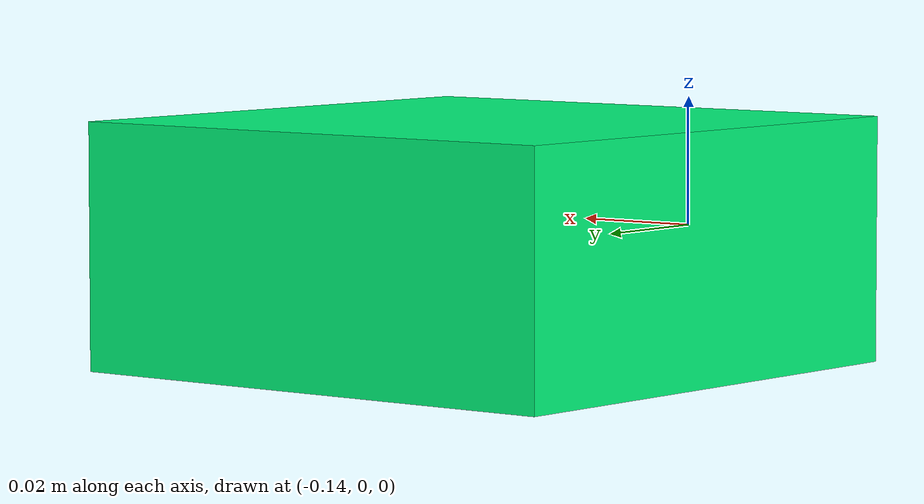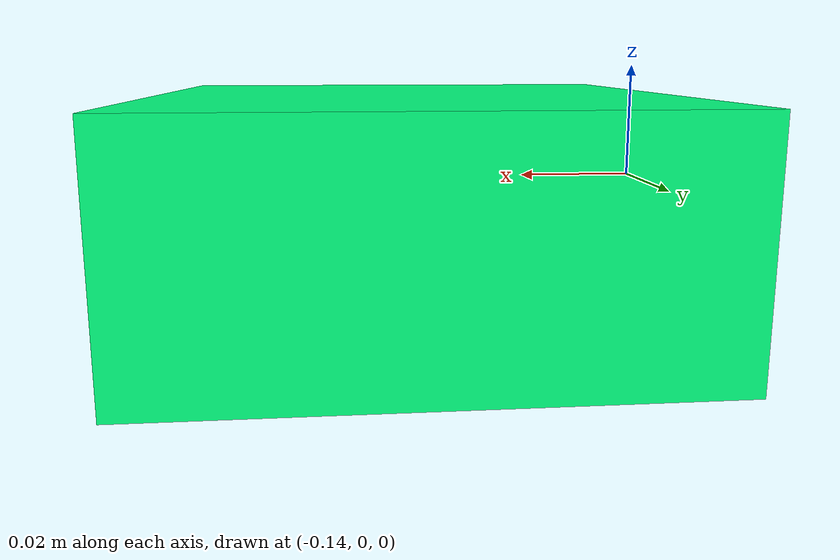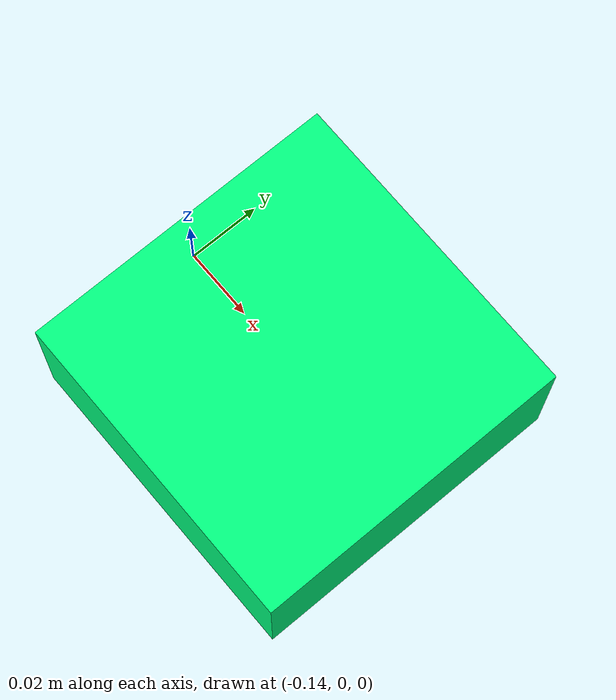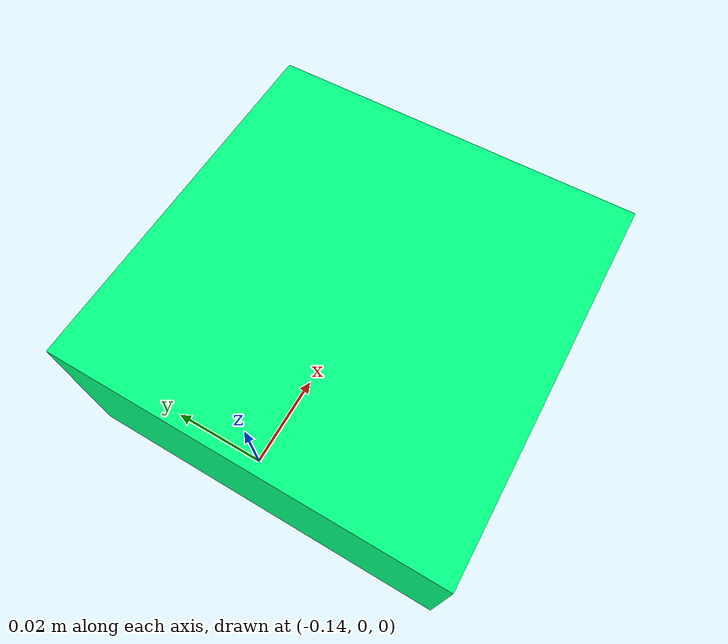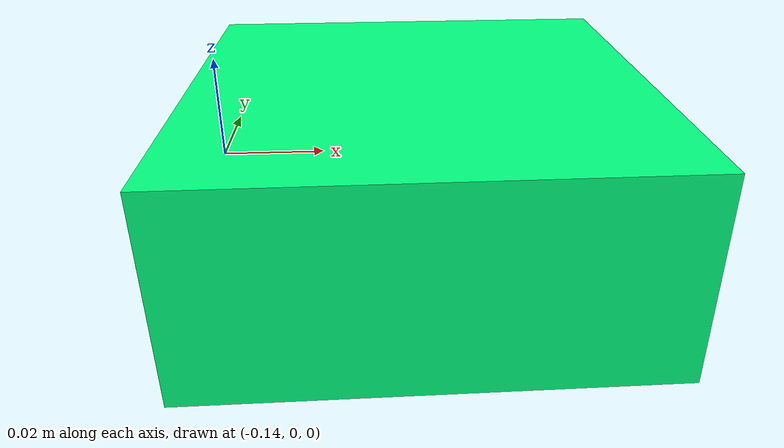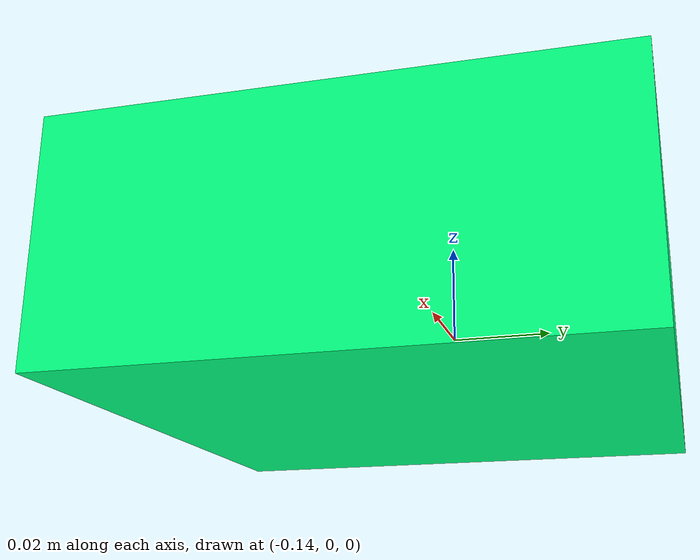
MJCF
<mujoco model="target_box">
    <worldbody>
        <body name="target_box" pos="0.0 0.0 0.0" quat="1 0 0 0">
        <geom name="target_box" pos="-0.1 0 -0.005" size="0.045 0.045 0.02" rgba="0 1 0.5 1.0" type="box" mass="0.01" friction="0.3 0.001 0.0001" priority="1"  />
        </body>
    </worldbody>
</mujoco>
